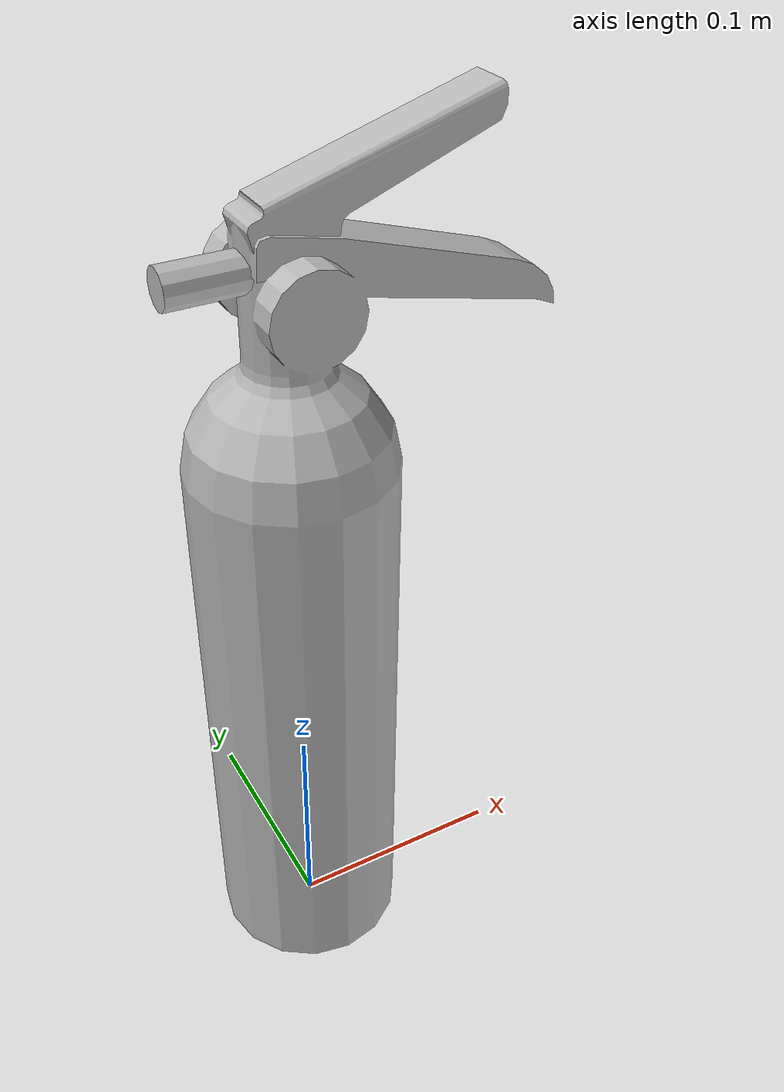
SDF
<?xml version='1.0' ?>
<sdf version='1.6'>
  <model name='Extinguisher'>
    <static>true</static>
    <link name='link'>
      <collision name='collision'>
        <geometry>
          <mesh>
            <uri>model://Extinguisher/meshes/Extinguisher.dae</uri>
          </mesh>
        </geometry>
      </collision>
      <visual name='visual'>
        <geometry>
          <mesh>
            <uri>model://Extinguisher/meshes/Extinguisher.dae</uri>
          </mesh>
        </geometry>
      </visual>
    </link>
  </model>
</sdf>
